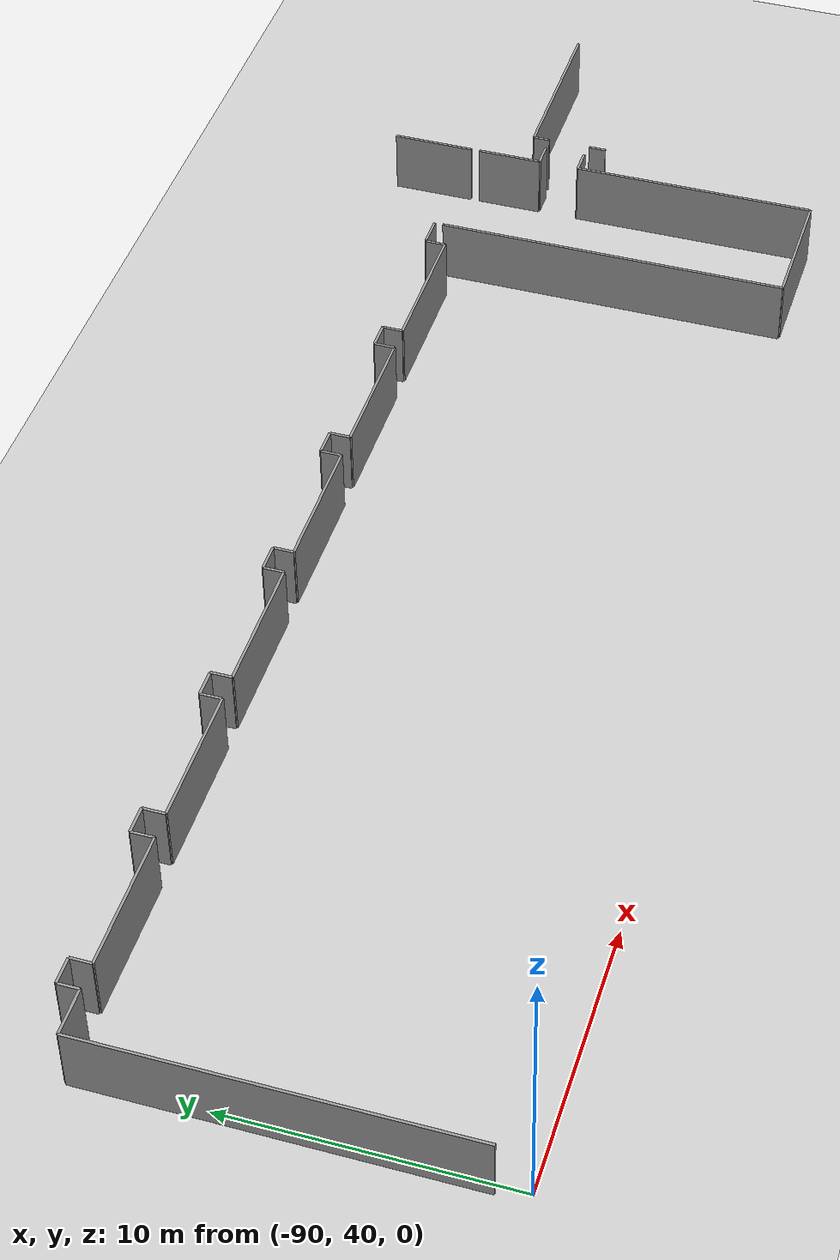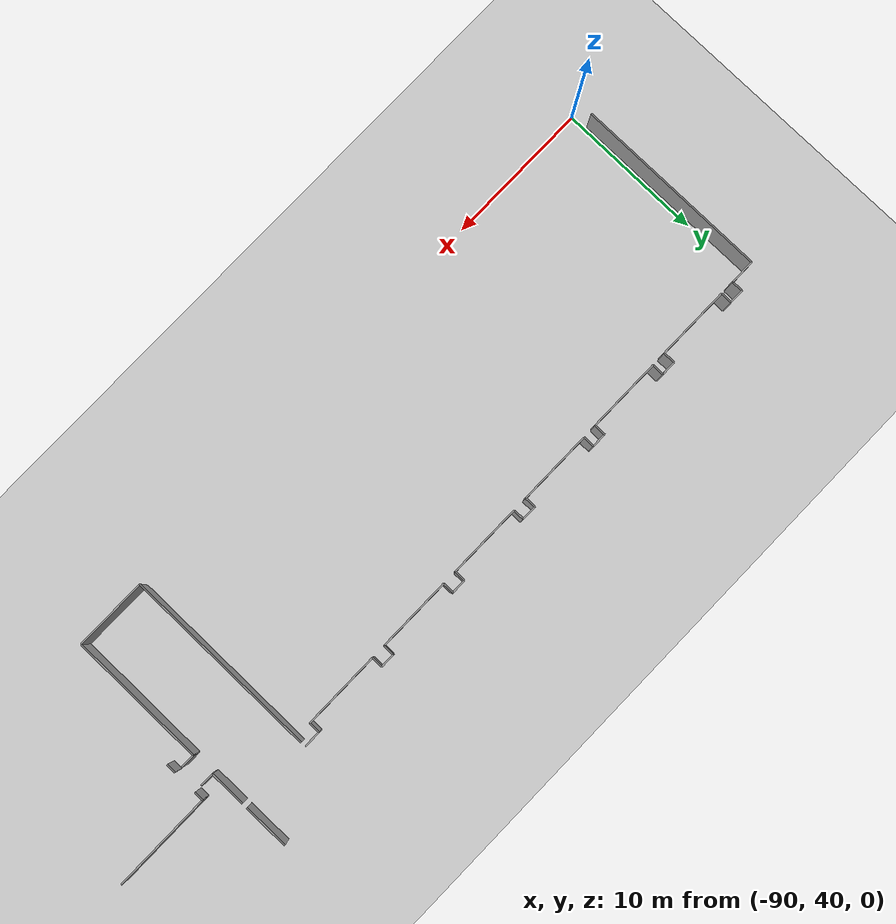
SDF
<sdf version="1.6">
 <world name="default">
  <model name="ground_plane">
   <static>1</static>
   <link name="link">
    <collision name="collision">
     <geometry><plane><normal>0 0 1</normal><size>100 100</size></plane></geometry>
     <surface><friction><ode><mu>100</mu><mu2>50</mu2></ode></friction></surface>
    </collision>
    <visual name="visual">
     <cast_shadows>0</cast_shadows>
     <geometry><plane><normal>0 0 1</normal><size>100 100</size></plane></geometry>
     <material>
      <script><uri>file://media/materials/scripts/gazebo.material</uri><name>Gazebo/Grey</name></script>
     </material>
    </visual>
   </link>
  </model>
  <model name="0510035518_A_40_1_101">
   <static>1</static>
   <link name="Wall_7">
    <collision name="Wall_7_Collision">
     <geometry><box><size>3.14639568117 0.1 2.5</size></box></geometry>
     <pose>1.57319784058 0 1.25 0 0 0</pose>
    </collision>
    <visual name="Wall_7_Visual">
     <pose>1.57319784058 0 1.25 0 0 0</pose>
     <geometry><box><size>3.14639568117 0.1 2.5</size></box></geometry>
     <material>
      <script><uri>file://media/materials/scripts/gazebo.material</uri><name>Gazebo/Grey</name></script>
      <ambient>1 1 1 1</ambient>
     </material>
    </visual>
    <pose>71.1517307082 -10.2236900603 0 0 0 -1.57079632679</pose>
   </link>
   <link name="Wall_8">
    <collision name="Wall_8_Collision">
     <geometry><box><size>1.15541441728 0.1 2.5</size></box></geometry>
     <pose>0.577707208638 0 1.25 0 0 0</pose>
    </collision>
    <visual name="Wall_8_Visual">
     <pose>0.577707208638 0 1.25 0 0 0</pose>
     <geometry><box><size>1.15541441728 0.1 2.5</size></box></geometry>
     <material>
      <script><uri>file://media/materials/scripts/gazebo.material</uri><name>Gazebo/Grey</name></script>
      <ambient>1 1 1 1</ambient>
     </material>
    </visual>
    <pose>66.2241981581 -13.3700857415 0 0 0 3.14159265359</pose>
   </link>
   <link name="Wall_9">
    <collision name="Wall_9_Collision">
     <geometry><box><size>0.763925055573 0.1 2.5</size></box></geometry>
     <pose>0.381962527787 0 1.25 0 0 0</pose>
    </collision>
    <visual name="Wall_9_Visual">
     <pose>0.381962527787 0 1.25 0 0 0</pose>
     <geometry><box><size>0.763925055573 0.1 2.5</size></box></geometry>
     <material>
      <script><uri>file://media/materials/scripts/gazebo.material</uri><name>Gazebo/Grey</name></script>
      <ambient>1 1 1 1</ambient>
     </material>
    </visual>
    <pose>65.0687837409 -13.3700857415 0 0 0 -1.57079632679</pose>
   </link>
   <link name="Wall_10">
    <collision name="Wall_10_Collision">
     <geometry><box><size>5.33070816132 0.1 2.5</size></box></geometry>
     <pose>2.66535408066 0 1.25 0 0 0</pose>
    </collision>
    <visual name="Wall_10_Visual">
     <pose>2.66535408066 0 1.25 0 0 0</pose>
     <geometry><box><size>5.33070816132 0.1 2.5</size></box></geometry>
     <material>
      <script><uri>file://media/materials/scripts/gazebo.material</uri><name>Gazebo/Grey</name></script>
      <ambient>1 1 1 1</ambient>
     </material>
    </visual>
    <pose>65.0687837409 -14.1340107971 0 0 0 3.14159265359</pose>
   </link>
   <link name="Wall_11">
    <collision name="Wall_11_Collision">
     <geometry><box><size>0.766973642426 0.1 2.5</size></box></geometry>
     <pose>0.383486821213 0 1.25 0 0 0</pose>
    </collision>
    <visual name="Wall_11_Visual">
     <pose>0.383486821213 0 1.25 0 0 0</pose>
     <geometry><box><size>0.766973642426 0.1 2.5</size></box></geometry>
     <material>
      <script><uri>file://media/materials/scripts/gazebo.material</uri><name>Gazebo/Grey</name></script>
      <ambient>1 1 1 1</ambient>
     </material>
    </visual>
    <pose>59.7380755795 -14.1340107971 0 0 0 1.57079632679</pose>
   </link>
   <link name="Wall_12">
    <collision name="Wall_12_Collision">
     <geometry><box><size>0.988250238171 0.1 2.5</size></box></geometry>
     <pose>0.494125119085 0 1.25 0 0 0</pose>
    </collision>
    <visual name="Wall_12_Visual">
     <pose>0.494125119085 0 1.25 0 0 0</pose>
     <geometry><box><size>0.988250238171 0.1 2.5</size></box></geometry>
     <material>
      <script><uri>file://media/materials/scripts/gazebo.material</uri><name>Gazebo/Grey</name></script>
      <ambient>1 1 1 1</ambient>
     </material>
    </visual>
    <pose>59.7380755795 -13.3670371547 0 0 0 3.14159265359</pose>
   </link>
   <link name="Wall_13">
    <collision name="Wall_13_Collision">
     <geometry><box><size>0.764433153382 0.1 2.5</size></box></geometry>
     <pose>0.382216576691 0 1.25 0 0 0</pose>
    </collision>
    <visual name="Wall_13_Visual">
     <pose>0.382216576691 0 1.25 0 0 0</pose>
     <geometry><box><size>0.764433153382 0.1 2.5</size></box></geometry>
     <material>
      <script><uri>file://media/materials/scripts/gazebo.material</uri><name>Gazebo/Grey</name></script>
      <ambient>1 1 1 1</ambient>
     </material>
    </visual>
    <pose>58.7498253414 -13.3670371547 0 0 0 -1.57079632679</pose>
   </link>
   <link name="Wall_14">
    <collision name="Wall_14_Collision">
     <geometry><box><size>5.11705303271 0.1 2.5</size></box></geometry>
     <pose>2.55852651635 0 1.25 0 0 0</pose>
    </collision>
    <visual name="Wall_14_Visual">
     <pose>2.55852651635 0 1.25 0 0 0</pose>
     <geometry><box><size>5.11705303271 0.1 2.5</size></box></geometry>
     <material>
      <script><uri>file://media/materials/scripts/gazebo.material</uri><name>Gazebo/Grey</name></script>
      <ambient>1 1 1 1</ambient>
     </material>
    </visual>
    <pose>58.7498253414 -14.131470308 0 0 0 3.14159265359</pose>
   </link>
   <link name="Wall_15">
    <collision name="Wall_15_Collision">
     <geometry><box><size>0.769260082566 0.1 2.5</size></box></geometry>
     <pose>0.384630041283 0 1.25 0 0 0</pose>
    </collision>
    <visual name="Wall_15_Visual">
     <pose>0.384630041283 0 1.25 0 0 0</pose>
     <geometry><box><size>0.769260082566 0.1 2.5</size></box></geometry>
     <material>
      <script><uri>file://media/materials/scripts/gazebo.material</uri><name>Gazebo/Grey</name></script>
      <ambient>1 1 1 1</ambient>
     </material>
    </visual>
    <pose>53.6327723087 -14.131470308 0 0 0 1.57079632679</pose>
   </link>
   <link name="Wall_16">
    <collision name="Wall_16_Collision">
     <geometry><box><size>0.992569069546 0.1 2.5</size></box></geometry>
     <pose>0.496284534773 0 1.25 0 0 0</pose>
    </collision>
    <visual name="Wall_16_Visual">
     <pose>0.496284534773 0 1.25 0 0 0</pose>
     <geometry><box><size>0.992569069546 0.1 2.5</size></box></geometry>
     <material>
      <script><uri>file://media/materials/scripts/gazebo.material</uri><name>Gazebo/Grey</name></script>
      <ambient>1 1 1 1</ambient>
     </material>
    </visual>
    <pose>53.6327723087 -13.3622102255 0 0 0 3.14159265359</pose>
   </link>
   <link name="Wall_17">
    <collision name="Wall_17_Collision">
     <geometry><box><size>0.764433153382 0.1 2.5</size></box></geometry>
     <pose>0.382216576691 0 1.25 0 0 0</pose>
    </collision>
    <visual name="Wall_17_Visual">
     <pose>0.382216576691 0 1.25 0 0 0</pose>
     <geometry><box><size>0.764433153382 0.1 2.5</size></box></geometry>
     <material>
      <script><uri>file://media/materials/scripts/gazebo.material</uri><name>Gazebo/Grey</name></script>
      <ambient>1 1 1 1</ambient>
     </material>
    </visual>
    <pose>52.6402032391 -13.3622102255 0 0 0 -1.57079632679</pose>
   </link>
   <link name="Wall_18">
    <collision name="Wall_18_Collision">
     <geometry><box><size>5.0995236583 0.1 2.5</size></box></geometry>
     <pose>2.54976182915 0 1.25 0 0 0</pose>
    </collision>
    <visual name="Wall_18_Visual">
     <pose>2.54976182915 0 1.25 0 0 0</pose>
     <geometry><box><size>5.0995236583 0.1 2.5</size></box></geometry>
     <material>
      <script><uri>file://media/materials/scripts/gazebo.material</uri><name>Gazebo/Grey</name></script>
      <ambient>1 1 1 1</ambient>
     </material>
    </visual>
    <pose>52.6402032391 -14.1266433789 0 0 0 3.14159265359</pose>
   </link>
   <link name="Wall_19">
    <collision name="Wall_19_Collision">
     <geometry><box><size>0.754779295014 0.1 2.5</size></box></geometry>
     <pose>0.377389647507 0 1.25 0 0 0</pose>
    </collision>
    <visual name="Wall_19_Visual">
     <pose>0.377389647507 0 1.25 0 0 0</pose>
     <geometry><box><size>0.754779295014 0.1 2.5</size></box></geometry>
     <material>
      <script><uri>file://media/materials/scripts/gazebo.material</uri><name>Gazebo/Grey</name></script>
      <ambient>1 1 1 1</ambient>
     </material>
    </visual>
    <pose>47.5406795808 -14.1266433789 0 0 0 1.57079632679</pose>
   </link>
   <link name="Wall_20">
    <collision name="Wall_20_Collision">
     <geometry><box><size>1.01162273738 0.1 2.5</size></box></geometry>
     <pose>0.505811368688 0 1.25 0 0 0</pose>
    </collision>
    <visual name="Wall_20_Visual">
     <pose>0.505811368688 0 1.25 0 0 0</pose>
     <geometry><box><size>1.01162273738 0.1 2.5</size></box></geometry>
     <material>
      <script><uri>file://media/materials/scripts/gazebo.material</uri><name>Gazebo/Grey</name></script>
      <ambient>1 1 1 1</ambient>
     </material>
    </visual>
    <pose>47.5406795808 -13.3718640838 0 0 0 3.14159265359</pose>
   </link>
   <link name="Wall_21">
    <collision name="Wall_21_Collision">
     <geometry><box><size>0.754779295014 0.1 2.5</size></box></geometry>
     <pose>0.377389647507 0 1.25 0 0 0</pose>
    </collision>
    <visual name="Wall_21_Visual">
     <pose>0.377389647507 0 1.25 0 0 0</pose>
     <geometry><box><size>0.754779295014 0.1 2.5</size></box></geometry>
     <material>
      <script><uri>file://media/materials/scripts/gazebo.material</uri><name>Gazebo/Grey</name></script>
      <ambient>1 1 1 1</ambient>
     </material>
    </visual>
    <pose>46.5290568434 -13.3718640838 0 0 0 -1.57079632679</pose>
   </link>
   <link name="Wall_22">
    <collision name="Wall_22_Collision">
     <geometry><box><size>5.09672912036 0.1 2.5</size></box></geometry>
     <pose>2.54836456018 0 1.25 0 0 0</pose>
    </collision>
    <visual name="Wall_22_Visual">
     <pose>2.54836456018 0 1.25 0 0 0</pose>
     <geometry><box><size>5.09672912036 0.1 2.5</size></box></geometry>
     <material>
      <script><uri>file://media/materials/scripts/gazebo.material</uri><name>Gazebo/Grey</name></script>
      <ambient>1 1 1 1</ambient>
     </material>
    </visual>
    <pose>46.5290568434 -14.1266433789 0 0 0 3.14159265359</pose>
   </link>
   <link name="Wall_23">
    <collision name="Wall_23_Collision">
     <geometry><box><size>0.772562718323 0.1 2.5</size></box></geometry>
     <pose>0.386281359162 0 1.25 0 0 0</pose>
    </collision>
    <visual name="Wall_23_Visual">
     <pose>0.386281359162 0 1.25 0 0 0</pose>
     <geometry><box><size>0.772562718323 0.1 2.5</size></box></geometry>
     <material>
      <script><uri>file://media/materials/scripts/gazebo.material</uri><name>Gazebo/Grey</name></script>
      <ambient>1 1 1 1</ambient>
     </material>
    </visual>
    <pose>41.4323277231 -14.1266433789 0 0 0 1.57079632679</pose>
   </link>
   <link name="Wall_24">
    <collision name="Wall_24_Collision">
     <geometry><box><size>0.989266433789 0.1 2.5</size></box></geometry>
     <pose>0.494633216894 0 1.25 0 0 0</pose>
    </collision>
    <visual name="Wall_24_Visual">
     <pose>0.494633216894 0 1.25 0 0 0</pose>
     <geometry><box><size>0.989266433789 0.1 2.5</size></box></geometry>
     <material>
      <script><uri>file://media/materials/scripts/gazebo.material</uri><name>Gazebo/Grey</name></script>
      <ambient>1 1 1 1</ambient>
     </material>
    </visual>
    <pose>41.4323277231 -13.3540806605 0 0 0 3.14159265359</pose>
   </link>
   <link name="Wall_25">
    <collision name="Wall_25_Collision">
     <geometry><box><size>0.787043505875 0.1 2.5</size></box></geometry>
     <pose>0.393521752937 0 1.25 0 0 0</pose>
    </collision>
    <visual name="Wall_25_Visual">
     <pose>0.393521752937 0 1.25 0 0 0</pose>
     <geometry><box><size>0.787043505875 0.1 2.5</size></box></geometry>
     <material>
      <script><uri>file://media/materials/scripts/gazebo.material</uri><name>Gazebo/Grey</name></script>
      <ambient>1 1 1 1</ambient>
     </material>
    </visual>
    <pose>40.4430612893 -13.3540806605 0 0 0 -1.57079632679</pose>
   </link>
   <link name="Wall_26">
    <collision name="Wall_26_Collision">
     <geometry><box><size>5.10612892982 0.1 2.5</size></box></geometry>
     <pose>2.55306446491 0 1.25 0 0 0</pose>
    </collision>
    <visual name="Wall_26_Visual">
     <pose>2.55306446491 0 1.25 0 0 0</pose>
     <geometry><box><size>5.10612892982 0.1 2.5</size></box></geometry>
     <material>
      <script><uri>file://media/materials/scripts/gazebo.material</uri><name>Gazebo/Grey</name></script>
      <ambient>1 1 1 1</ambient>
     </material>
    </visual>
    <pose>40.4430612893 -14.1411241664 0 0 0 3.14159265359</pose>
   </link>
   <link name="Wall_27">
    <collision name="Wall_27_Collision">
     <geometry><box><size>0.814734836456 0.1 2.5</size></box></geometry>
     <pose>0.407367418228 0 1.25 0 0 0</pose>
    </collision>
    <visual name="Wall_27_Visual">
     <pose>0.407367418228 0 1.25 0 0 0</pose>
     <geometry><box><size>0.814734836456 0.1 2.5</size></box></geometry>
     <material>
      <script><uri>file://media/materials/scripts/gazebo.material</uri><name>Gazebo/Grey</name></script>
      <ambient>1 1 1 1</ambient>
     </material>
    </visual>
    <pose>35.3369323595 -14.1411241664 0 0 0 1.57079632679</pose>
   </link>
   <link name="Wall_28">
    <collision name="Wall_28_Collision">
     <geometry><box><size>1.00273102572 0.1 2.5</size></box></geometry>
     <pose>0.501365512861 0 1.25 0 0 0</pose>
    </collision>
    <visual name="Wall_28_Visual">
     <pose>0.501365512861 0 1.25 0 0 0</pose>
     <geometry><box><size>1.00273102572 0.1 2.5</size></box></geometry>
     <material>
      <script><uri>file://media/materials/scripts/gazebo.material</uri><name>Gazebo/Grey</name></script>
      <ambient>1 1 1 1</ambient>
     </material>
    </visual>
    <pose>35.3369323595 -13.3263893299 0 0 0 3.14159265359</pose>
   </link>
   <link name="Wall_29">
    <collision name="Wall_29_Collision">
     <geometry><box><size>0.821340107971 0.1 2.5</size></box></geometry>
     <pose>0.410670053985 0 1.25 0 0 0</pose>
    </collision>
    <visual name="Wall_29_Visual">
     <pose>0.410670053985 0 1.25 0 0 0</pose>
     <geometry><box><size>0.821340107971 0.1 2.5</size></box></geometry>
     <material>
      <script><uri>file://media/materials/scripts/gazebo.material</uri><name>Gazebo/Grey</name></script>
      <ambient>1 1 1 1</ambient>
     </material>
    </visual>
    <pose>34.3342013338 -13.3263893299 0 0 0 -1.57079632679</pose>
   </link>
   <link name="Wall_30">
    <collision name="Wall_30_Collision">
     <geometry><box><size>5.1048586853 0.1 2.5</size></box></geometry>
     <pose>2.55242934265 0 1.25 0 0 0</pose>
    </collision>
    <visual name="Wall_30_Visual">
     <pose>2.55242934265 0 1.25 0 0 0</pose>
     <geometry><box><size>5.1048586853 0.1 2.5</size></box></geometry>
     <material>
      <script><uri>file://media/materials/scripts/gazebo.material</uri><name>Gazebo/Grey</name></script>
      <ambient>1 1 1 1</ambient>
     </material>
    </visual>
    <pose>34.3342013338 -14.1477294379 0 0 0 3.14159265359</pose>
   </link>
   <link name="Wall_31">
    <collision name="Wall_31_Collision">
     <geometry><box><size>0.780946332169 0.1 2.5</size></box></geometry>
     <pose>0.390473166084 0 1.25 0 0 0</pose>
    </collision>
    <visual name="Wall_31_Visual">
     <pose>0.390473166084 0 1.25 0 0 0</pose>
     <geometry><box><size>0.780946332169 0.1 2.5</size></box></geometry>
     <material>
      <script><uri>file://media/materials/scripts/gazebo.material</uri><name>Gazebo/Grey</name></script>
      <ambient>1 1 1 1</ambient>
     </material>
    </visual>
    <pose>29.2293426485 -14.1477294379 0 0 0 1.57079632679</pose>
   </link>
   <link name="Wall_32">
    <collision name="Wall_32_Collision">
     <geometry><box><size>0.982915211178 0.1 2.5</size></box></geometry>
     <pose>0.491457605589 0 1.25 0 0 0</pose>
    </collision>
    <visual name="Wall_32_Visual">
     <pose>0.491457605589 0 1.25 0 0 0</pose>
     <geometry><box><size>0.982915211178 0.1 2.5</size></box></geometry>
     <material>
      <script><uri>file://media/materials/scripts/gazebo.material</uri><name>Gazebo/Grey</name></script>
      <ambient>1 1 1 1</ambient>
     </material>
    </visual>
    <pose>29.2293426485 -13.3667831057 0 0 0 3.14159265359</pose>
   </link>
   <link name="Wall_33">
    <collision name="Wall_33_Collision">
     <geometry><box><size>0.772054620514 0.1 2.5</size></box></geometry>
     <pose>0.386027310257 0 1.25 0 0 0</pose>
    </collision>
    <visual name="Wall_33_Visual">
     <pose>0.386027310257 0 1.25 0 0 0</pose>
     <geometry><box><size>0.772054620514 0.1 2.5</size></box></geometry>
     <material>
      <script><uri>file://media/materials/scripts/gazebo.material</uri><name>Gazebo/Grey</name></script>
      <ambient>1 1 1 1</ambient>
     </material>
    </visual>
    <pose>28.2464274373 -13.3667831057 0 0 0 -1.57079632679</pose>
   </link>
   <link name="Wall_34">
    <collision name="Wall_34_Collision">
     <geometry><box><size>1.70568434424 0.1 2.5</size></box></geometry>
     <pose>0.852842172118 0 1.25 0 0 0</pose>
    </collision>
    <visual name="Wall_34_Visual">
     <pose>0.852842172118 0 1.25 0 0 0</pose>
     <geometry><box><size>1.70568434424 0.1 2.5</size></box></geometry>
     <material>
      <script><uri>file://media/materials/scripts/gazebo.material</uri><name>Gazebo/Grey</name></script>
      <ambient>1 1 1 1</ambient>
     </material>
    </visual>
    <pose>28.2464274373 -14.1388377263 0 0 0 3.14159265359</pose>
   </link>
   <link name="Wall_35">
    <collision name="Wall_35_Collision">
     <geometry><box><size>13.4130200064 0.1 2.5</size></box></geometry>
     <pose>6.70651000318 0 1.25 0 0 0</pose>
    </collision>
    <visual name="Wall_35_Visual">
     <pose>6.70651000318 0 1.25 0 0 0</pose>
     <geometry><box><size>13.4130200064 0.1 2.5</size></box></geometry>
     <material>
      <script><uri>file://media/materials/scripts/gazebo.material</uri><name>Gazebo/Grey</name></script>
      <ambient>1 1 1 1</ambient>
     </material>
    </visual>
    <pose>26.540743093 -14.1388377263 0 0 0 -1.57079632679</pose>
   </link>
   <link name="Wall_37">
    <collision name="Wall_37_Collision">
     <geometry><box><size>13.4506192442 0.1 2.5</size></box></geometry>
     <pose>6.7253096221 0 1.25 0 0 0</pose>
    </collision>
    <visual name="Wall_37_Visual">
     <pose>6.7253096221 0 1.25 0 0 0</pose>
     <geometry><box><size>13.4506192442 0.1 2.5</size></box></geometry>
     <material>
      <script><uri>file://media/materials/scripts/gazebo.material</uri><name>Gazebo/Grey</name></script>
      <ambient>1 1 1 1</ambient>
     </material>
    </visual>
    <pose>66.2282629406 -27.1491902191 0 0 0 1.57079632679</pose>
   </link>
   <link name="Wall_38">
    <collision name="Wall_38_Collision">
     <geometry><box><size>2.49348999682 0.1 2.5</size></box></geometry>
     <pose>1.24674499841 0 1.25 0 0 0</pose>
    </collision>
    <visual name="Wall_38_Visual">
     <pose>1.24674499841 0 1.25 0 0 0</pose>
     <geometry><box><size>2.49348999682 0.1 2.5</size></box></geometry>
     <material>
      <script><uri>file://media/materials/scripts/gazebo.material</uri><name>Gazebo/Grey</name></script>
      <ambient>1 1 1 1</ambient>
     </material>
    </visual>
    <pose>71.1578278819 -13.6985709749 0 0 0 -1.57079632679</pose>
   </link>
   <link name="Wall_39">
    <collision name="Wall_39_Collision">
     <geometry><box><size>0.944807875516 0.1 2.5</size></box></geometry>
     <pose>0.472403937758 0 1.25 0 0 0</pose>
    </collision>
    <visual name="Wall_39_Visual">
     <pose>0.472403937758 0 1.25 0 0 0</pose>
     <geometry><box><size>0.944807875516 0.1 2.5</size></box></geometry>
     <material>
      <script><uri>file://media/materials/scripts/gazebo.material</uri><name>Gazebo/Grey</name></script>
      <ambient>1 1 1 1</ambient>
     </material>
    </visual>
    <pose>71.1578278819 -16.1920609717 0 0 0 0.0</pose>
   </link>
   <link name="Wall_40">
    <collision name="Wall_40_Collision">
     <geometry><box><size>0.932867577009 0.1 2.5</size></box></geometry>
     <pose>0.466433788504 0 1.25 0 0 0</pose>
    </collision>
    <visual name="Wall_40_Visual">
     <pose>0.466433788504 0 1.25 0 0 0</pose>
     <geometry><box><size>0.932867577009 0.1 2.5</size></box></geometry>
     <material>
      <script><uri>file://media/materials/scripts/gazebo.material</uri><name>Gazebo/Grey</name></script>
      <ambient>1 1 1 1</ambient>
     </material>
    </visual>
    <pose>72.1026357574 -17.7730073039 0 0 0 3.14159265359</pose>
   </link>
   <link name="Wall_41">
    <collision name="Wall_41_Collision">
     <geometry><box><size>9.38888536043 0.1 2.5</size></box></geometry>
     <pose>4.69444268022 0 1.25 0 0 0</pose>
    </collision>
    <visual name="Wall_41_Visual">
     <pose>4.69444268022 0 1.25 0 0 0</pose>
     <geometry><box><size>9.38888536043 0.1 2.5</size></box></geometry>
     <material>
      <script><uri>file://media/materials/scripts/gazebo.material</uri><name>Gazebo/Grey</name></script>
      <ambient>1 1 1 1</ambient>
     </material>
    </visual>
    <pose>71.1697681804 -17.7730073039 0 0 0 -1.57079632679</pose>
   </link>
   <link name="Wall_42">
    <collision name="Wall_42_Collision">
     <geometry><box><size>4.94152156594 0.1 2.5</size></box></geometry>
     <pose>2.47076078297 0 1.25 0 0 0</pose>
    </collision>
    <visual name="Wall_42_Visual">
     <pose>2.47076078297 0 1.25 0 0 0</pose>
     <geometry><box><size>4.94152156594 0.1 2.5</size></box></geometry>
     <material>
      <script><uri>file://media/materials/scripts/gazebo.material</uri><name>Gazebo/Grey</name></script>
      <ambient>1 1 1 1</ambient>
     </material>
    </visual>
    <pose>71.1697681804 -27.1618926643 0 0 0 3.13902209733</pose>
   </link>
   <link name="Wall_43">
    <collision name="Wall_43_Collision">
     <geometry><box><size>6.75439822166 0.1 2.5</size></box></geometry>
     <pose>3.37719911083 0 1.25 0 0 0</pose>
    </collision>
    <visual name="Wall_43_Visual">
     <pose>3.37719911083 0 1.25 0 0 0</pose>
     <geometry><box><size>6.75439822166 0.1 2.5</size></box></geometry>
     <material>
      <script><uri>file://media/materials/scripts/gazebo.material</uri><name>Gazebo/Grey</name></script>
      <ambient>1 1 1 1</ambient>
     </material>
    </visual>
    <pose>72.6396951413 -15.5472848523 0 0 0 0.0</pose>
   </link>
   <link name="Wall_48">
    <collision name="Wall_48_Collision">
     <geometry><box><size>0.667386471896 0.1 2.5</size></box></geometry>
     <pose>0.333693235948 0 1.25 0 0 0</pose>
    </collision>
    <visual name="Wall_48_Visual">
     <pose>0.333693235948 0 1.25 0 0 0</pose>
     <geometry><box><size>0.667386471896 0.1 2.5</size></box></geometry>
     <material>
      <script><uri>file://media/materials/scripts/gazebo.material</uri><name>Gazebo/Grey</name></script>
      <ambient>1 1 1 1</ambient>
     </material>
    </visual>
    <pose>72.6313115275 -18.5067005399 0 0 0 1.57079632679</pose>
   </link>
   <link name="Wall_49">
    <collision name="Wall_49_Collision">
     <geometry><box><size>0.639496048185 0.1 2.5</size></box></geometry>
     <pose>0.319748024092 0 1.25 0 0 0</pose>
    </collision>
    <visual name="Wall_49_Visual">
     <pose>0.319748024092 0 1.25 0 0 0</pose>
     <geometry><box><size>0.639496048185 0.1 2.5</size></box></geometry>
     <material>
      <script><uri>file://media/materials/scripts/gazebo.material</uri><name>Gazebo/Grey</name></script>
      <ambient>1 1 1 1</ambient>
     </material>
    </visual>
    <pose>72.6313115275 -16.1867259447 0 0 0 1.5576862317</pose>
   </link>
   <pose>-116.8 68.630612893 0 0 0 0</pose>
  </model>
 </world>
</sdf>
